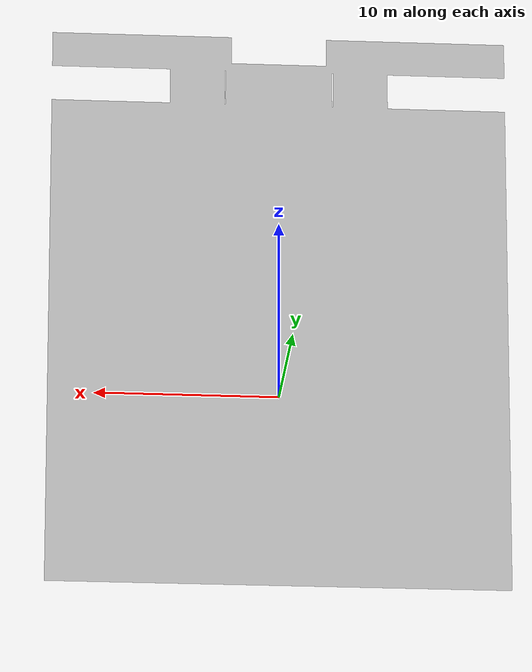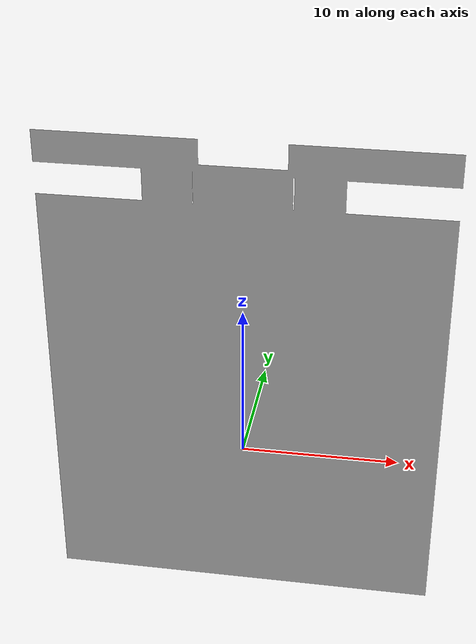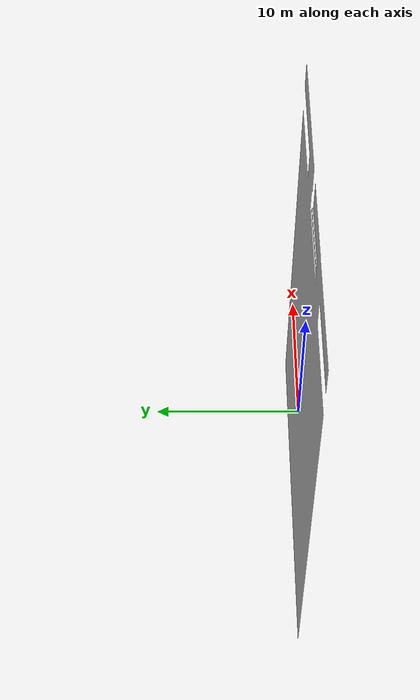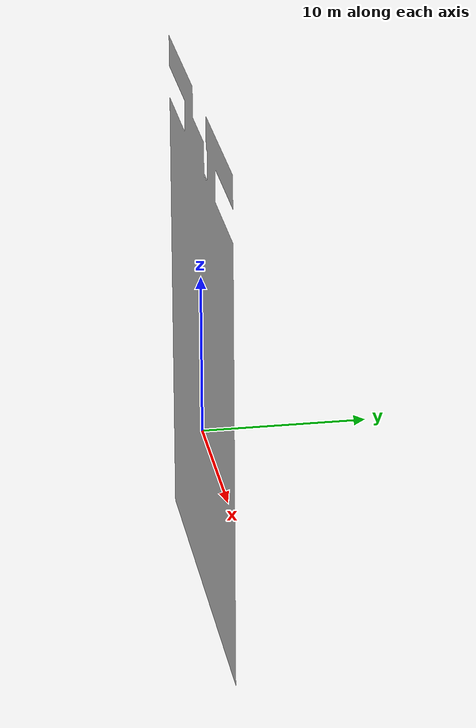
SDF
<?xml version="1.0" ?>
<sdf version="1.6">
  <model name="aws_robomaker_hospital_floor_03_floor">
    <link name="link">
      <visual name="visual">
	      <geometry>
          <mesh>
            <uri>model://aws_robomaker_hospital_floor_03_floor/meshes/aws_robomaker_hospital_floor_03_floor_visual.dae</uri>
          </mesh>
        </geometry>
      </visual>
      <collision name="collision">
        <pose>0 0 0 1.57 0 0</pose>
        <geometry>
          <box>
            <size>25 40 0.01</size>
          </box>
        </geometry>
        <surface>
          <friction>
            <ode>
              <mu>100</mu>
              <mu2>50</mu2>
            </ode>
          </friction>
        </surface>
      </collision>
</link>
  <static>1</static>
  </model>
</sdf>
